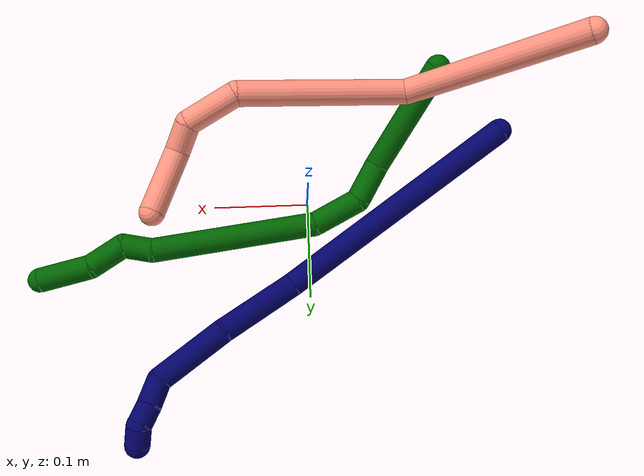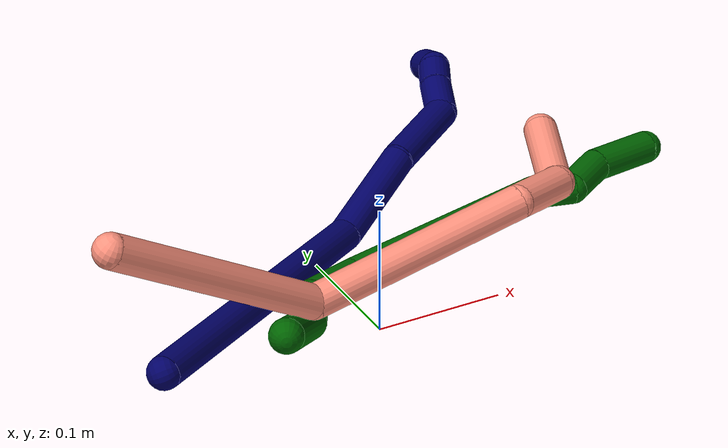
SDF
<sdf version="1.7">
 <world name="default">
  <model name="6">
   <static>0</static>
   <link name="6">
    <collision name="collision-cylinder-e_1_1_4">
     <pose>0.016715 -0.011783 -0.054365 2.92815 0.2919 1.88202</pose>
     <geometry><cylinder><radius>0.0125</radius><length>0.116169</length></cylinder></geometry>
     <surface>
      <friction><ode><mu>1.16</mu><mu2>1.16</mu2><slip1>0</slip1><slip2>0</slip2></ode></friction>
      <contact><ode><kp>1e+06</kp><kd>1</kd><max_vel>0</max_vel><min_depth>0.001</min_depth></ode></contact>
     </surface>
    </collision>
    <visual name="visual-cylinder-e_1_1_4">
     <pose>0.016715 -0.011783 -0.054365 2.92815 0.2919 1.88202</pose>
     <geometry><cylinder><radius>0.0125</radius><length>0.116169</length></cylinder></geometry>
     <material><ambient>0 0.392157 0.003922 1</ambient></material>
    </visual>
    <collision name="collision-cylinder-e_2_4_5">
     <pose>0.033999 -0.021196 -0.129295 -3.02682 0.027453 -0.469088</pose>
     <geometry><cylinder><radius>0.0125</radius><length>0.041419</length></cylinder></geometry>
     <surface>
      <friction><ode><mu>1.16</mu><mu2>1.16</mu2><slip1>0</slip1><slip2>0</slip2></ode></friction>
      <contact><ode><kp>1e+06</kp><kd>1</kd><max_vel>0</max_vel><min_depth>0.001</min_depth></ode></contact>
     </surface>
    </collision>
    <visual name="visual-cylinder-e_2_4_5">
     <pose>0.033999 -0.021196 -0.129295 -3.02682 0.027453 -0.469088</pose>
     <geometry><cylinder><radius>0.0125</radius><length>0.041419</length></cylinder></geometry>
     <material><ambient>0 0.392157 0.003922 1</ambient></material>
    </visual>
    <collision name="collision-cylinder-e_3_5_6">
     <pose>0.048418 -0.011742 -0.169852 -2.80111 0.578518 -2.09397</pose>
     <geometry><cylinder><radius>0.0125</radius><length>0.050663</length></cylinder></geometry>
     <surface>
      <friction><ode><mu>1.16</mu><mu2>1.16</mu2><slip1>0</slip1><slip2>0</slip2></ode></friction>
      <contact><ode><kp>1e+06</kp><kd>1</kd><max_vel>0</max_vel><min_depth>0.001</min_depth></ode></contact>
     </surface>
    </collision>
    <visual name="visual-cylinder-e_3_5_6">
     <pose>0.048418 -0.011742 -0.169852 -2.80111 0.578518 -2.09397</pose>
     <geometry><cylinder><radius>0.0125</radius><length>0.050663</length></cylinder></geometry>
     <material><ambient>0 0.392157 0.003922 1</ambient></material>
    </visual>
    <collision name="collision-cylinder-e_4_6_7">
     <pose>0.117123 0.040787 -0.235051 -2.35355 0.707811 -1.453</pose>
     <geometry><cylinder><radius>0.0125</radius><length>0.168737</length></cylinder></geometry>
     <surface>
      <friction><ode><mu>1.16</mu><mu2>1.16</mu2><slip1>0</slip1><slip2>0</slip2></ode></friction>
      <contact><ode><kp>1e+06</kp><kd>1</kd><max_vel>0</max_vel><min_depth>0.001</min_depth></ode></contact>
     </surface>
    </collision>
    <visual name="visual-cylinder-e_4_6_7">
     <pose>0.117123 0.040787 -0.235051 -2.35355 0.707811 -1.453</pose>
     <geometry><cylinder><radius>0.0125</radius><length>0.168737</length></cylinder></geometry>
     <material><ambient>0 0.392157 0.003922 1</ambient></material>
    </visual>
    <collision name="collision-cylinder-e_5_7_8">
     <pose>0.18489 0.093465 -0.284009 -2.0492 1.00802 -1.47365</pose>
     <geometry><cylinder><radius>0.0125</radius><length>0.030535</length></cylinder></geometry>
     <surface>
      <friction><ode><mu>1.16</mu><mu2>1.16</mu2><slip1>0</slip1><slip2>0</slip2></ode></friction>
      <contact><ode><kp>1e+06</kp><kd>1</kd><max_vel>0</max_vel><min_depth>0.001</min_depth></ode></contact>
     </surface>
    </collision>
    <visual name="visual-cylinder-e_5_7_8">
     <pose>0.18489 0.093465 -0.284009 -2.0492 1.00802 -1.47365</pose>
     <geometry><cylinder><radius>0.0125</radius><length>0.030535</length></cylinder></geometry>
     <material><ambient>0 0.392157 0.003922 1</ambient></material>
    </visual>
    <collision name="collision-cylinder-e_6_8_9">
     <pose>0.205625 0.108206 -0.304021 -2.70901 0.411725 -1.51991</pose>
     <geometry><cylinder><radius>0.0125</radius><length>0.039091</length></cylinder></geometry>
     <surface>
      <friction><ode><mu>1.16</mu><mu2>1.16</mu2><slip1>0</slip1><slip2>0</slip2></ode></friction>
      <contact><ode><kp>1e+06</kp><kd>1</kd><max_vel>0</max_vel><min_depth>0.001</min_depth></ode></contact>
     </surface>
    </collision>
    <visual name="visual-cylinder-e_6_8_9">
     <pose>0.205625 0.108206 -0.304021 -2.70901 0.411725 -1.51991</pose>
     <geometry><cylinder><radius>0.0125</radius><length>0.039091</length></cylinder></geometry>
     <material><ambient>0 0.392157 0.003922 1</ambient></material>
    </visual>
    <collision name="collision-cylinder-e_7_9_2">
     <pose>0.231422 0.126569 -0.336763 -2.55917 0.738809 -1.82404</pose>
     <geometry><cylinder><radius>0.0125</radius><length>0.053386</length></cylinder></geometry>
     <surface>
      <friction><ode><mu>1.16</mu><mu2>1.16</mu2><slip1>0</slip1><slip2>0</slip2></ode></friction>
      <contact><ode><kp>1e+06</kp><kd>1</kd><max_vel>0</max_vel><min_depth>0.001</min_depth></ode></contact>
     </surface>
    </collision>
    <visual name="visual-cylinder-e_7_9_2">
     <pose>0.231422 0.126569 -0.336763 -2.55917 0.738809 -1.82404</pose>
     <geometry><cylinder><radius>0.0125</radius><length>0.053386</length></cylinder></geometry>
     <material><ambient>0 0.392157 0.003922 1</ambient></material>
    </visual>
    <collision name="collision-sphere-2">
     <pose>0.249398 0.137423 -0.353243 0 -0 0</pose>
     <geometry><sphere><radius>0.0125</radius></sphere></geometry>
     <surface>
      <friction><ode><mu>1.16</mu><mu2>1.16</mu2><slip1>0</slip1><slip2>0</slip2></ode></friction>
      <contact><ode><kp>1e+06</kp><kd>1</kd><max_vel>0</max_vel><min_depth>0.001</min_depth></ode></contact>
     </surface>
    </collision>
    <visual name="visual-sphere-2">
     <pose>0.249398 0.137423 -0.353243 0 -0 0</pose>
     <geometry><sphere><radius>0.0125</radius></sphere></geometry>
     <material><ambient>0 0.392157 0.003922 1</ambient></material>
    </visual>
    <collision name="collision-sphere-9">
     <pose>0.213447 0.115715 -0.320283 0 -0 0</pose>
     <geometry><sphere><radius>0.0125</radius></sphere></geometry>
     <surface>
      <friction><ode><mu>1.16</mu><mu2>1.16</mu2><slip1>0</slip1><slip2>0</slip2></ode></friction>
      <contact><ode><kp>1e+06</kp><kd>1</kd><max_vel>0</max_vel><min_depth>0.001</min_depth></ode></contact>
     </surface>
    </collision>
    <visual name="visual-sphere-9">
     <pose>0.213447 0.115715 -0.320283 0 -0 0</pose>
     <geometry><sphere><radius>0.0125</radius></sphere></geometry>
     <material><ambient>0 0.392157 0.003922 1</ambient></material>
    </visual>
    <collision name="collision-sphere-4">
     <pose>0.03343 -0.023567 -0.10873 0 -0 0</pose>
     <geometry><sphere><radius>0.0125</radius></sphere></geometry>
     <surface>
      <friction><ode><mu>1.16</mu><mu2>1.16</mu2><slip1>0</slip1><slip2>0</slip2></ode></friction>
      <contact><ode><kp>1e+06</kp><kd>1</kd><max_vel>0</max_vel><min_depth>0.001</min_depth></ode></contact>
     </surface>
    </collision>
    <visual name="visual-sphere-4">
     <pose>0.03343 -0.023567 -0.10873 0 -0 0</pose>
     <geometry><sphere><radius>0.0125</radius></sphere></geometry>
     <material><ambient>0 0.392157 0.003922 1</ambient></material>
    </visual>
    <collision name="collision-sphere-1">
     <geometry><sphere><radius>0.0125</radius></sphere></geometry>
     <surface>
      <friction><ode><mu>1.16</mu><mu2>1.16</mu2><slip1>0</slip1><slip2>0</slip2></ode></friction>
      <contact><ode><kp>1e+06</kp><kd>1</kd><max_vel>0</max_vel><min_depth>0.001</min_depth></ode></contact>
     </surface>
    </collision>
    <visual name="visual-sphere-1">
     <geometry><sphere><radius>0.0125</radius></sphere></geometry>
     <material><ambient>0 0.392157 0.003922 1</ambient></material>
    </visual>
    <collision name="collision-sphere-8">
     <pose>0.197803 0.100697 -0.287759 0 -0 0</pose>
     <geometry><sphere><radius>0.0125</radius></sphere></geometry>
     <surface>
      <friction><ode><mu>1.16</mu><mu2>1.16</mu2><slip1>0</slip1><slip2>0</slip2></ode></friction>
      <contact><ode><kp>1e+06</kp><kd>1</kd><max_vel>0</max_vel><min_depth>0.001</min_depth></ode></contact>
     </surface>
    </collision>
    <visual name="visual-sphere-8">
     <pose>0.197803 0.100697 -0.287759 0 -0 0</pose>
     <geometry><sphere><radius>0.0125</radius></sphere></geometry>
     <material><ambient>0 0.392157 0.003922 1</ambient></material>
    </visual>
    <collision name="collision-sphere-5">
     <pose>0.034567 -0.018825 -0.149861 0 -0 0</pose>
     <geometry><sphere><radius>0.0125</radius></sphere></geometry>
     <surface>
      <friction><ode><mu>1.16</mu><mu2>1.16</mu2><slip1>0</slip1><slip2>0</slip2></ode></friction>
      <contact><ode><kp>1e+06</kp><kd>1</kd><max_vel>0</max_vel><min_depth>0.001</min_depth></ode></contact>
     </surface>
    </collision>
    <visual name="visual-sphere-5">
     <pose>0.034567 -0.018825 -0.149861 0 -0 0</pose>
     <geometry><sphere><radius>0.0125</radius></sphere></geometry>
     <material><ambient>0 0.392157 0.003922 1</ambient></material>
    </visual>
    <collision name="collision-sphere-6">
     <pose>0.062269 -0.004659 -0.189844 0 -0 0</pose>
     <geometry><sphere><radius>0.0125</radius></sphere></geometry>
     <surface>
      <friction><ode><mu>1.16</mu><mu2>1.16</mu2><slip1>0</slip1><slip2>0</slip2></ode></friction>
      <contact><ode><kp>1e+06</kp><kd>1</kd><max_vel>0</max_vel><min_depth>0.001</min_depth></ode></contact>
     </surface>
    </collision>
    <visual name="visual-sphere-6">
     <pose>0.062269 -0.004659 -0.189844 0 -0 0</pose>
     <geometry><sphere><radius>0.0125</radius></sphere></geometry>
     <material><ambient>0 0.392157 0.003922 1</ambient></material>
    </visual>
    <collision name="collision-sphere-7">
     <pose>0.171977 0.086234 -0.280259 0 -0 0</pose>
     <geometry><sphere><radius>0.0125</radius></sphere></geometry>
     <surface>
      <friction><ode><mu>1.16</mu><mu2>1.16</mu2><slip1>0</slip1><slip2>0</slip2></ode></friction>
      <contact><ode><kp>1e+06</kp><kd>1</kd><max_vel>0</max_vel><min_depth>0.001</min_depth></ode></contact>
     </surface>
    </collision>
    <visual name="visual-sphere-7">
     <pose>0.171977 0.086234 -0.280259 0 -0 0</pose>
     <geometry><sphere><radius>0.0125</radius></sphere></geometry>
     <material><ambient>0 0.392157 0.003922 1</ambient></material>
    </visual>
    <inertial>
     <pose>0.103209 0.035763 -0.196946 0 -0 0</pose>
     <mass>0.5</mass>
     <inertia><ixx>-0.0002</ixx><ixy>0</ixy><ixz>0</ixz><iyy>1e-05</iyy><iyz>0</iyz><izz>-0.00056</izz></inertia>
    </inertial>
   </link>
   <pose>-0.132258 -0.113426 0.099685 1.37763 0.496044 -0.539307</pose>
  </model>
  <model name="7">
   <static>0</static>
   <link name="7">
    <collision name="collision-cylinder-e_1_1_4">
     <pose>0.092527 0.067086 0.066861 -0.787078 0.773713 -0.335119</pose>
     <geometry><cylinder><radius>0.0125</radius><length>0.264818</length></cylinder></geometry>
     <surface>
      <friction><ode><mu>1.16</mu><mu2>1.16</mu2><slip1>0</slip1><slip2>0</slip2></ode></friction>
      <contact><ode><kp>1e+06</kp><kd>1</kd><max_vel>0</max_vel><min_depth>0.001</min_depth></ode></contact>
     </surface>
    </collision>
    <visual name="visual-cylinder-e_1_1_4">
     <pose>0.092527 0.067086 0.066861 -0.787078 0.773713 -0.335119</pose>
     <geometry><cylinder><radius>0.0125</radius><length>0.264818</length></cylinder></geometry>
     <material><ambient>0.003922 0 0.403922 1</ambient></material>
    </visual>
    <collision name="collision-cylinder-e_2_4_5">
     <pose>0.202185 0.163376 0.161042 -0.818724 0.404728 -0.177569</pose>
     <geometry><cylinder><radius>0.0125</radius><length>0.087011</length></cylinder></geometry>
     <surface>
      <friction><ode><mu>1.16</mu><mu2>1.16</mu2><slip1>0</slip1><slip2>0</slip2></ode></friction>
      <contact><ode><kp>1e+06</kp><kd>1</kd><max_vel>0</max_vel><min_depth>0.001</min_depth></ode></contact>
     </surface>
    </collision>
    <visual name="visual-cylinder-e_2_4_5">
     <pose>0.202185 0.163376 0.161042 -0.818724 0.404728 -0.177569</pose>
     <geometry><cylinder><radius>0.0125</radius><length>0.087011</length></cylinder></geometry>
     <material><ambient>0.003922 0 0.403922 1</ambient></material>
    </visual>
    <collision name="collision-cylinder-e_3_5_6">
     <pose>0.24288 0.216051 0.209355 -0.841041 0.642424 -0.295429</pose>
     <geometry><cylinder><radius>0.0125</radius><length>0.078659</length></cylinder></geometry>
     <surface>
      <friction><ode><mu>1.16</mu><mu2>1.16</mu2><slip1>0</slip1><slip2>0</slip2></ode></friction>
      <contact><ode><kp>1e+06</kp><kd>1</kd><max_vel>0</max_vel><min_depth>0.001</min_depth></ode></contact>
     </surface>
    </collision>
    <visual name="visual-cylinder-e_3_5_6">
     <pose>0.24288 0.216051 0.209355 -0.841041 0.642424 -0.295429</pose>
     <geometry><cylinder><radius>0.0125</radius><length>0.078659</length></cylinder></geometry>
     <material><ambient>0.003922 0 0.403922 1</ambient></material>
    </visual>
    <collision name="collision-cylinder-e_4_6_7">
     <pose>0.270114 0.253216 0.231923 -1.45637 0.260129 -0.232213</pose>
     <geometry><cylinder><radius>0.0125</radius><length>0.028532</length></cylinder></geometry>
     <surface>
      <friction><ode><mu>1.16</mu><mu2>1.16</mu2><slip1>0</slip1><slip2>0</slip2></ode></friction>
      <contact><ode><kp>1e+06</kp><kd>1</kd><max_vel>0</max_vel><min_depth>0.001</min_depth></ode></contact>
     </surface>
    </collision>
    <visual name="visual-cylinder-e_4_6_7">
     <pose>0.270114 0.253216 0.231923 -1.45637 0.260129 -0.232213</pose>
     <geometry><cylinder><radius>0.0125</radius><length>0.028532</length></cylinder></geometry>
     <material><ambient>0.003922 0 0.403922 1</ambient></material>
    </visual>
    <collision name="collision-cylinder-e_5_7_8">
     <pose>0.277235 0.276564 0.235387 -1.3774 0.337575 -0.278726</pose>
     <geometry><cylinder><radius>0.0125</radius><length>0.020846</length></cylinder></geometry>
     <surface>
      <friction><ode><mu>1.16</mu><mu2>1.16</mu2><slip1>0</slip1><slip2>0</slip2></ode></friction>
      <contact><ode><kp>1e+06</kp><kd>1</kd><max_vel>0</max_vel><min_depth>0.001</min_depth></ode></contact>
     </surface>
    </collision>
    <visual name="visual-cylinder-e_5_7_8">
     <pose>0.277235 0.276564 0.235387 -1.3774 0.337575 -0.278726</pose>
     <geometry><cylinder><radius>0.0125</radius><length>0.020846</length></cylinder></geometry>
     <material><ambient>0.003922 0 0.403922 1</ambient></material>
    </visual>
    <collision name="collision-cylinder-e_6_8_2">
     <pose>0.288015 0.292422 0.23426 -2.02326 0.815373 -1.20816</pose>
     <geometry><cylinder><radius>0.0125</radius><length>0.020133</length></cylinder></geometry>
     <surface>
      <friction><ode><mu>1.16</mu><mu2>1.16</mu2><slip1>0</slip1><slip2>0</slip2></ode></friction>
      <contact><ode><kp>1e+06</kp><kd>1</kd><max_vel>0</max_vel><min_depth>0.001</min_depth></ode></contact>
     </surface>
    </collision>
    <visual name="visual-cylinder-e_6_8_2">
     <pose>0.288015 0.292422 0.23426 -2.02326 0.815373 -1.20816</pose>
     <geometry><cylinder><radius>0.0125</radius><length>0.020133</length></cylinder></geometry>
     <material><ambient>0.003922 0 0.403922 1</ambient></material>
    </visual>
    <collision name="collision-sphere-2">
     <pose>0.295344 0.298629 0.231243 0 -0 0</pose>
     <geometry><sphere><radius>0.0125</radius></sphere></geometry>
     <surface>
      <friction><ode><mu>1.16</mu><mu2>1.16</mu2><slip1>0</slip1><slip2>0</slip2></ode></friction>
      <contact><ode><kp>1e+06</kp><kd>1</kd><max_vel>0</max_vel><min_depth>0.001</min_depth></ode></contact>
     </surface>
    </collision>
    <visual name="visual-sphere-2">
     <pose>0.295344 0.298629 0.231243 0 -0 0</pose>
     <geometry><sphere><radius>0.0125</radius></sphere></geometry>
     <material><ambient>0.003922 0 0.403922 1</ambient></material>
    </visual>
    <collision name="collision-sphere-4">
     <pose>0.185054 0.134172 0.133722 0 -0 0</pose>
     <geometry><sphere><radius>0.0125</radius></sphere></geometry>
     <surface>
      <friction><ode><mu>1.16</mu><mu2>1.16</mu2><slip1>0</slip1><slip2>0</slip2></ode></friction>
      <contact><ode><kp>1e+06</kp><kd>1</kd><max_vel>0</max_vel><min_depth>0.001</min_depth></ode></contact>
     </surface>
    </collision>
    <visual name="visual-sphere-4">
     <pose>0.185054 0.134172 0.133722 0 -0 0</pose>
     <geometry><sphere><radius>0.0125</radius></sphere></geometry>
     <material><ambient>0.003922 0 0.403922 1</ambient></material>
    </visual>
    <collision name="collision-sphere-1">
     <geometry><sphere><radius>0.0125</radius></sphere></geometry>
     <surface>
      <friction><ode><mu>1.16</mu><mu2>1.16</mu2><slip1>0</slip1><slip2>0</slip2></ode></friction>
      <contact><ode><kp>1e+06</kp><kd>1</kd><max_vel>0</max_vel><min_depth>0.001</min_depth></ode></contact>
     </surface>
    </collision>
    <visual name="visual-sphere-1">
     <geometry><sphere><radius>0.0125</radius></sphere></geometry>
     <material><ambient>0.003922 0 0.403922 1</ambient></material>
    </visual>
    <collision name="collision-sphere-8">
     <pose>0.280687 0.286215 0.237277 0 -0 0</pose>
     <geometry><sphere><radius>0.0125</radius></sphere></geometry>
     <surface>
      <friction><ode><mu>1.16</mu><mu2>1.16</mu2><slip1>0</slip1><slip2>0</slip2></ode></friction>
      <contact><ode><kp>1e+06</kp><kd>1</kd><max_vel>0</max_vel><min_depth>0.001</min_depth></ode></contact>
     </surface>
    </collision>
    <visual name="visual-sphere-8">
     <pose>0.280687 0.286215 0.237277 0 -0 0</pose>
     <geometry><sphere><radius>0.0125</radius></sphere></geometry>
     <material><ambient>0.003922 0 0.403922 1</ambient></material>
    </visual>
    <collision name="collision-sphere-5">
     <pose>0.219317 0.192581 0.188362 0 -0 0</pose>
     <geometry><sphere><radius>0.0125</radius></sphere></geometry>
     <surface>
      <friction><ode><mu>1.16</mu><mu2>1.16</mu2><slip1>0</slip1><slip2>0</slip2></ode></friction>
      <contact><ode><kp>1e+06</kp><kd>1</kd><max_vel>0</max_vel><min_depth>0.001</min_depth></ode></contact>
     </surface>
    </collision>
    <visual name="visual-sphere-5">
     <pose>0.219317 0.192581 0.188362 0 -0 0</pose>
     <geometry><sphere><radius>0.0125</radius></sphere></geometry>
     <material><ambient>0.003922 0 0.403922 1</ambient></material>
    </visual>
    <collision name="collision-sphere-6">
     <pose>0.266444 0.239521 0.230349 0 -0 0</pose>
     <geometry><sphere><radius>0.0125</radius></sphere></geometry>
     <surface>
      <friction><ode><mu>1.16</mu><mu2>1.16</mu2><slip1>0</slip1><slip2>0</slip2></ode></friction>
      <contact><ode><kp>1e+06</kp><kd>1</kd><max_vel>0</max_vel><min_depth>0.001</min_depth></ode></contact>
     </surface>
    </collision>
    <visual name="visual-sphere-6">
     <pose>0.266444 0.239521 0.230349 0 -0 0</pose>
     <geometry><sphere><radius>0.0125</radius></sphere></geometry>
     <material><ambient>0.003922 0 0.403922 1</ambient></material>
    </visual>
    <collision name="collision-sphere-7">
     <pose>0.273783 0.266912 0.233497 0 -0 0</pose>
     <geometry><sphere><radius>0.0125</radius></sphere></geometry>
     <surface>
      <friction><ode><mu>1.16</mu><mu2>1.16</mu2><slip1>0</slip1><slip2>0</slip2></ode></friction>
      <contact><ode><kp>1e+06</kp><kd>1</kd><max_vel>0</max_vel><min_depth>0.001</min_depth></ode></contact>
     </surface>
    </collision>
    <visual name="visual-sphere-7">
     <pose>0.273783 0.266912 0.233497 0 -0 0</pose>
     <geometry><sphere><radius>0.0125</radius></sphere></geometry>
     <material><ambient>0.003922 0 0.403922 1</ambient></material>
    </visual>
    <inertial>
     <pose>0.16097 0.135706 0.128853 0 -0 0</pose>
     <mass>0.5</mass>
     <inertia>
      <ixx>0.000778</ixx>
      <ixy>0</ixy>
      <ixz>0</ixz>
      <iyy>0.001005</iyy>
      <iyz>0</iyz>
      <izz>-0.001982</izz>
     </inertia>
    </inertial>
   </link>
   <pose>-0.198551 -0.058563 0.05893 0.96217 0.906361 0.723344</pose>
  </model>
  <model name="16">
   <static>0</static>
   <link name="16">
    <collision name="collision-cylinder-e_1_1_4">
     <pose>0.089136 -0.008043 -0.017776 2.7167 1.3553 2.61785</pose>
     <geometry><cylinder><radius>0.0125</radius><length>0.182493</length></cylinder></geometry>
     <surface>
      <friction><ode><mu>1.16</mu><mu2>1.16</mu2><slip1>0</slip1><slip2>0</slip2></ode></friction>
      <contact><ode><kp>1e+06</kp><kd>1</kd><max_vel>0</max_vel><min_depth>0.001</min_depth></ode></contact>
     </surface>
    </collision>
    <visual name="visual-cylinder-e_1_1_4">
     <pose>0.089136 -0.008043 -0.017776 2.7167 1.3553 2.61785</pose>
     <geometry><cylinder><radius>0.0125</radius><length>0.182493</length></cylinder></geometry>
     <material><ambient>1 0.576471 0.494118 1</ambient></material>
    </visual>
    <collision name="collision-cylinder-e_2_4_5">
     <pose>0.251012 -0.010025 0.005515 -0.146535 1.05221 -0.085193</pose>
     <geometry><cylinder><radius>0.0125</radius><length>0.167505</length></cylinder></geometry>
     <surface>
      <friction><ode><mu>1.16</mu><mu2>1.16</mu2><slip1>0</slip1><slip2>0</slip2></ode></friction>
      <contact><ode><kp>1e+06</kp><kd>1</kd><max_vel>0</max_vel><min_depth>0.001</min_depth></ode></contact>
     </surface>
    </collision>
    <visual name="visual-cylinder-e_2_4_5">
     <pose>0.251012 -0.010025 0.005515 -0.146535 1.05221 -0.085193</pose>
     <geometry><cylinder><radius>0.0125</radius><length>0.167505</length></cylinder></geometry>
     <material><ambient>1 0.576471 0.494118 1</ambient></material>
    </visual>
    <collision name="collision-cylinder-e_3_5_6">
     <pose>0.348781 0.005488 0.046956 -1.53127 1.20945 -1.17273</pose>
     <geometry><cylinder><radius>0.0125</radius><length>0.053511</length></cylinder></geometry>
     <surface>
      <friction><ode><mu>1.16</mu><mu2>1.16</mu2><slip1>0</slip1><slip2>0</slip2></ode></friction>
      <contact><ode><kp>1e+06</kp><kd>1</kd><max_vel>0</max_vel><min_depth>0.001</min_depth></ode></contact>
     </surface>
    </collision>
    <visual name="visual-cylinder-e_3_5_6">
     <pose>0.348781 0.005488 0.046956 -1.53127 1.20945 -1.17273</pose>
     <geometry><cylinder><radius>0.0125</radius><length>0.053511</length></cylinder></geometry>
     <material><ambient>1 0.576471 0.494118 1</ambient></material>
    </visual>
    <collision name="collision-cylinder-e_4_6_7">
     <pose>0.383517 0.023533 0.039332 -2.3203 0.691006 -1.3816</pose>
     <geometry><cylinder><radius>0.0125</radius><length>0.030466</length></cylinder></geometry>
     <surface>
      <friction><ode><mu>1.16</mu><mu2>1.16</mu2><slip1>0</slip1><slip2>0</slip2></ode></friction>
      <contact><ode><kp>1e+06</kp><kd>1</kd><max_vel>0</max_vel><min_depth>0.001</min_depth></ode></contact>
     </surface>
    </collision>
    <visual name="visual-cylinder-e_4_6_7">
     <pose>0.383517 0.023533 0.039332 -2.3203 0.691006 -1.3816</pose>
     <geometry><cylinder><radius>0.0125</radius><length>0.030466</length></cylinder></geometry>
     <material><ambient>1 0.576471 0.494118 1</ambient></material>
    </visual>
    <collision name="collision-cylinder-e_5_7_2">
     <pose>0.407149 0.062032 0.030071 -1.61305 0.43539 -0.453563</pose>
     <geometry><cylinder><radius>0.0125</radius><length>0.066025</length></cylinder></geometry>
     <surface>
      <friction><ode><mu>1.16</mu><mu2>1.16</mu2><slip1>0</slip1><slip2>0</slip2></ode></friction>
      <contact><ode><kp>1e+06</kp><kd>1</kd><max_vel>0</max_vel><min_depth>0.001</min_depth></ode></contact>
     </surface>
    </collision>
    <visual name="visual-cylinder-e_5_7_2">
     <pose>0.407149 0.062032 0.030071 -1.61305 0.43539 -0.453563</pose>
     <geometry><cylinder><radius>0.0125</radius><length>0.066025</length></cylinder></geometry>
     <material><ambient>1 0.576471 0.494118 1</ambient></material>
    </visual>
    <collision name="collision-sphere-2">
     <pose>0.421072 0.091938 0.028806 0 -0 0</pose>
     <geometry><sphere><radius>0.0125</radius></sphere></geometry>
     <surface>
      <friction><ode><mu>1.16</mu><mu2>1.16</mu2><slip1>0</slip1><slip2>0</slip2></ode></friction>
      <contact><ode><kp>1e+06</kp><kd>1</kd><max_vel>0</max_vel><min_depth>0.001</min_depth></ode></contact>
     </surface>
    </collision>
    <visual name="visual-sphere-2">
     <pose>0.421072 0.091938 0.028806 0 -0 0</pose>
     <geometry><sphere><radius>0.0125</radius></sphere></geometry>
     <material><ambient>1 0.576471 0.494118 1</ambient></material>
    </visual>
    <collision name="collision-sphere-7">
     <pose>0.393225 0.032126 0.031335 0 -0 0</pose>
     <geometry><sphere><radius>0.0125</radius></sphere></geometry>
     <surface>
      <friction><ode><mu>1.16</mu><mu2>1.16</mu2><slip1>0</slip1><slip2>0</slip2></ode></friction>
      <contact><ode><kp>1e+06</kp><kd>1</kd><max_vel>0</max_vel><min_depth>0.001</min_depth></ode></contact>
     </surface>
    </collision>
    <visual name="visual-sphere-7">
     <pose>0.393225 0.032126 0.031335 0 -0 0</pose>
     <geometry><sphere><radius>0.0125</radius></sphere></geometry>
     <material><ambient>1 0.576471 0.494118 1</ambient></material>
    </visual>
    <collision name="collision-sphere-6">
     <pose>0.373808 0.01494 0.04733 0 -0 0</pose>
     <geometry><sphere><radius>0.0125</radius></sphere></geometry>
     <surface>
      <friction><ode><mu>1.16</mu><mu2>1.16</mu2><slip1>0</slip1><slip2>0</slip2></ode></friction>
      <contact><ode><kp>1e+06</kp><kd>1</kd><max_vel>0</max_vel><min_depth>0.001</min_depth></ode></contact>
     </surface>
    </collision>
    <visual name="visual-sphere-6">
     <pose>0.373808 0.01494 0.04733 0 -0 0</pose>
     <geometry><sphere><radius>0.0125</radius></sphere></geometry>
     <material><ambient>1 0.576471 0.494118 1</ambient></material>
    </visual>
    <collision name="collision-sphere-5">
     <pose>0.323753 -0.003963 0.046582 0 -0 0</pose>
     <geometry><sphere><radius>0.0125</radius></sphere></geometry>
     <surface>
      <friction><ode><mu>1.16</mu><mu2>1.16</mu2><slip1>0</slip1><slip2>0</slip2></ode></friction>
      <contact><ode><kp>1e+06</kp><kd>1</kd><max_vel>0</max_vel><min_depth>0.001</min_depth></ode></contact>
     </surface>
    </collision>
    <visual name="visual-sphere-5">
     <pose>0.323753 -0.003963 0.046582 0 -0 0</pose>
     <geometry><sphere><radius>0.0125</radius></sphere></geometry>
     <material><ambient>1 0.576471 0.494118 1</ambient></material>
    </visual>
    <collision name="collision-sphere-1">
     <geometry><sphere><radius>0.0125</radius></sphere></geometry>
     <surface>
      <friction><ode><mu>1.16</mu><mu2>1.16</mu2><slip1>0</slip1><slip2>0</slip2></ode></friction>
      <contact><ode><kp>1e+06</kp><kd>1</kd><max_vel>0</max_vel><min_depth>0.001</min_depth></ode></contact>
     </surface>
    </collision>
    <visual name="visual-sphere-1">
     <geometry><sphere><radius>0.0125</radius></sphere></geometry>
     <material><ambient>1 0.576471 0.494118 1</ambient></material>
    </visual>
    <collision name="collision-sphere-4">
     <pose>0.178272 -0.016086 -0.035553 0 -0 0</pose>
     <geometry><sphere><radius>0.0125</radius></sphere></geometry>
     <surface>
      <friction><ode><mu>1.16</mu><mu2>1.16</mu2><slip1>0</slip1><slip2>0</slip2></ode></friction>
      <contact><ode><kp>1e+06</kp><kd>1</kd><max_vel>0</max_vel><min_depth>0.001</min_depth></ode></contact>
     </surface>
    </collision>
    <visual name="visual-sphere-4">
     <pose>0.178272 -0.016086 -0.035553 0 -0 0</pose>
     <geometry><sphere><radius>0.0125</radius></sphere></geometry>
     <material><ambient>1 0.576471 0.494118 1</ambient></material>
    </visual>
    <inertial>
     <pose>0.231085 0.003919 0.006752 0 -0 0</pose>
     <mass>0.5</mass>
     <inertia>
      <ixx>0.000179</ixx>
      <ixy>0</ixy>
      <ixz>0</ixz>
      <iyy>0.000951</iyy>
      <iyz>0</iyz>
      <izz>-0.000888</izz>
     </inertia>
    </inertial>
   </link>
   <pose>-0.253413 -0.104824 0.197172 0.325243 0.332491 0.132361</pose>
  </model>
 </world>
</sdf>
